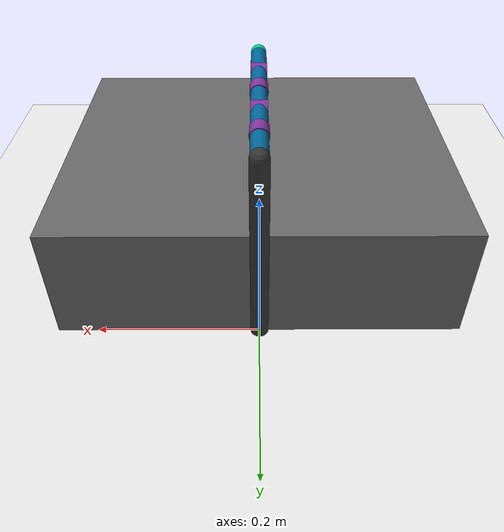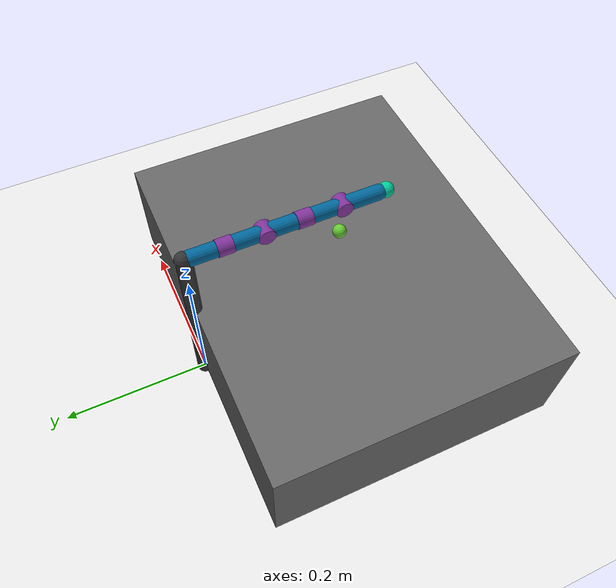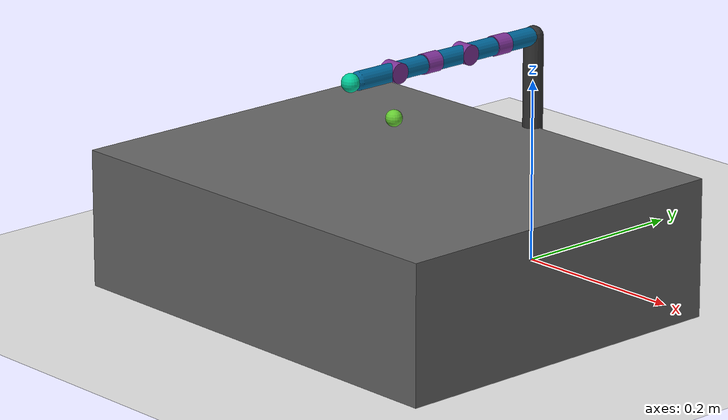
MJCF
<mujoco model="reacher">
	<asset>
		<texture builtin="gradient" height="256" rgb1=".9 .9 1." rgb2=".2 .3 .4" type="skybox" width="256"/>
		<texture builtin="checker" height="512" name="texplane" rgb1=".2 .3 .4" rgb2=".1 0.15 0.2" type="2d" width="512"/>
		<material name="floorplane" reflectance="0.5" texrepeat="1 1" texture="texplane" texuniform="true"/>
	</asset>
	<compiler angle="radian" inertiafromgeom="true"/>
	<default>
		<joint armature="1" damping="1" limited="true"/>
		<geom contype="0" friction="1 0.1 0.1" rgba="0.7 0.7 0 1"/>
	</default>
	<option gravity="0 0 -9.81" integrator="RK4" timestep="0.01"/>
	<worldbody>
		<!-- Arena -->
		<geom conaffinity="0" contype="0" material="floorplane" name="ground" pos="0 0 0" rgba="0.9 0.9 0.9 1" size="1 1 10" type="plane"/>
		<body name="table" pos="0 -0.2 0.075">
			<geom type="box" contype="1" size="0.25 0.2 0.075" rgba="0.4 0.4 0.4 1"/>
		</body>
		<light diffuse=".8 .8 .8" dir="0 -.15 -1" directional="false" pos="1 1 4.0" specular="0.3 0.3 0.3" castshadow="false"/>
    	<light diffuse=".8 .8 .8" dir="0 -.15 -1" directional="false" pos="-3. -3. 4.0" specular="0.3 0.3 0.3" castshadow="false"/>
		<!-- Arm -->
		<geom conaffinity="0" contype="0" fromto="0 0 0 0 0 0.25" name="root" rgba="0.2 0.2 0.2 1" size=".011" type="capsule"/>
		<body name="body0" pos="0 0 .25">
			<geom fromto="0 0 0 0 -0.05 0" name="link0" rgba="0.0 0.4 0.6 1" size=".01" type="capsule"/>
			<joint axis="0 0 1" limited="true" name="joint0" range="-1.5 1.5" pos="0 0 0" type="hinge"/>
			<joint axis="1 0 0" limited="true" name="joint2" range="-0.75 0.75" pos="0 0 0" type="hinge"/>
			<body name="body01" pos="0 -0.05 0">
				<joint axis="0 1 0" limited="true" name="joint1" pos="0 0 0" range="-1.0 1.0" type="hinge"/>
				<geom fromto="0 -0.01 0 0 0.01 0" name="hinge00" rgba="0.5 0.2 0.6 1" size=".011" type="cylinder"/>
				<geom fromto="0 0 0 0 -0.05 0" name="link01" rgba="0.0 0.4 0.6 1" size=".01" type="capsule"/>
				<geom fromto="-0.01 -0.05 0 0.01 -0.05 0" name="hinge01" rgba="0.5 0.2 0.6 1" size=".011" type="cylinder"/>
				<body name="body1" pos="0 -0.05 0">
					<joint axis="1 0 0" limited="true" name="joint3" pos="0 0 0" range="-0.75 0.75" type="hinge"/>
					<geom fromto="0 0 0 0 -0.05 0" name="link1" rgba="0.0 0.4 0.6 1" size=".01" type="capsule"/>
					<body name="body11" pos="0 -0.05 0">
						<joint axis="0 1 0" limited="true" name="joint4" pos="0 0 0" range="-1.0 1.0" type="hinge"/>
						<geom fromto="0 -0.01 0 0 0.01 0" name="hinge10" rgba="0.5 0.2 0.6 1" size=".011" type="cylinder"/>
						<geom fromto="0 0 0 0 -0.05 0" name="link11" rgba="0.0 0.4 0.6 1" size=".01" type="capsule"/>
						<geom fromto="-0.01 -0.05 0 0.01 -0.05 0" name="hinge1" rgba="0.5 0.2 0.6 1" size=".011" type="cylinder"/>
						<body name="body2" pos="0 -0.05 0">
							<geom fromto="0 0 0 0 -0.05 0" name="link2" rgba="0.0 0.4 0.6 1" size=".01" type="capsule"/>
							<joint axis="1 0 0" limited="true" name="joint5" pos="0 0 0" range="-0.75 0.75" type="hinge"/>
							<body name="fingertip" pos="0 -0.06 0">
								<geom conaffinity="1" contype="1" name="fingertip" pos="0 0 0" rgba="0.0 0.8 0.6 1" size=".01" type="sphere"/>
							</body>
						</body>
					</body>
				</body>
			</body>
		</body>
		<!-- Target -->
		<body name="target" pos="0 -0.20 .2">
			<geom conaffinity="0" contype="0" name="target" pos="0 0 0" rgba="0.4 0.8 0.2 1" size=".009" type="sphere"/>
		</body>
	</worldbody>
	<contact>
		<exclude body1="body0" body2="target"/>
	</contact>
	<actuator>
		<motor ctrllimited="true" ctrlrange="-1.0 1.0" gear="10" joint="joint0"/>
		<motor ctrllimited="true" ctrlrange="-1.0 1.0" gear="5" joint="joint1"/>
		<motor ctrllimited="true" ctrlrange="-1.0 1.0" gear="5" joint="joint2"/>
		<motor ctrllimited="true" ctrlrange="-1.0 1.0" gear="5" joint="joint3"/>
		<motor ctrllimited="true" ctrlrange="-1.0 1.0" gear="5" joint="joint4"/>
		<motor ctrllimited="true" ctrlrange="-1.0 1.0" gear="5" joint="joint5"/>
	</actuator>
</mujoco>
